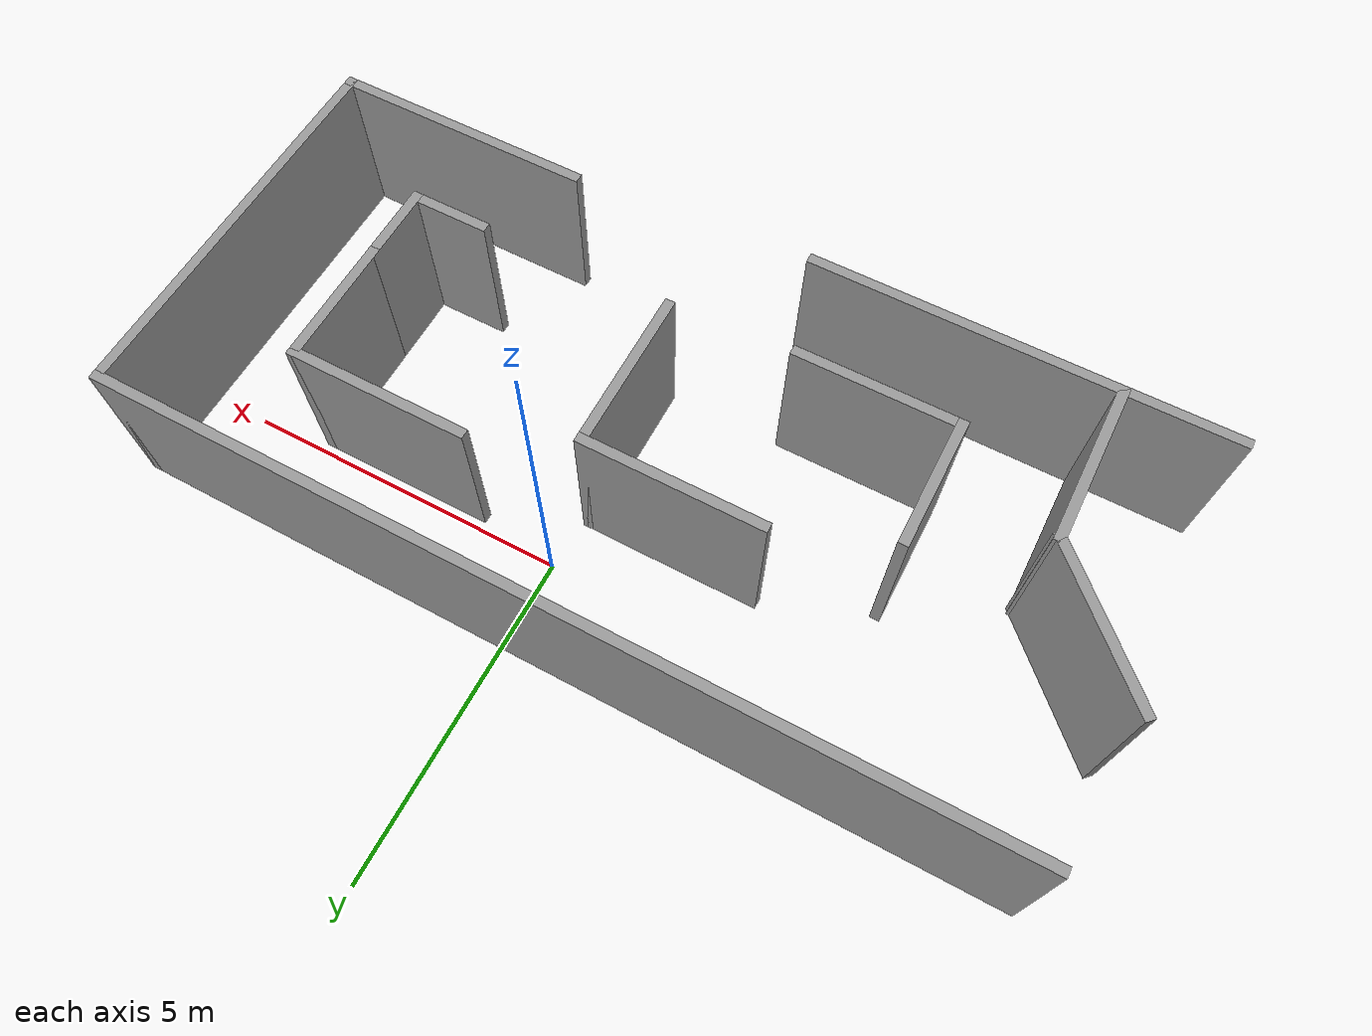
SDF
<?xml version='1.0'?>
<sdf version='1.7'>
  <model name='Untitled'>
    <pose>-0.895108 -1.7499 0 0 -0 0</pose>
    <link name='Wall_1'>
      <collision name='Wall_1_Collision'>
        <geometry>
          <box>
            <size>13.5 0.15 2.5</size>
          </box>
        </geometry>
        <pose>0 0 1.25 0 -0 0</pose>
      </collision>
      <visual name='Wall_1_Visual'>
        <pose>0 0 1.25 0 -0 0</pose>
        <geometry>
          <box>
            <size>13.5 0.15 2.5</size>
          </box>
        </geometry>
        <material>
          <script>
            <uri>file://media/materials/scripts/gazebo.material</uri>
            <name>Gazebo/Grey</name>
          </script>
          <ambient>1 1 1 1</ambient>
        </material>
        <meta>
          <layer>0</layer>
        </meta>
      </visual>
      <pose>0.145458 3.0682 0 0 -0 0</pose>
    </link>
    <link name='Wall_10'>
      <collision name='Wall_10_Collision'>
        <geometry>
          <box>
            <size>2.5 0.15 2.5</size>
          </box>
        </geometry>
        <pose>0 0 1.25 0 -0 0</pose>
      </collision>
      <visual name='Wall_10_Visual'>
        <pose>0 0 1.25 0 -0 0</pose>
        <geometry>
          <box>
            <size>2.5 0.15 2.5</size>
          </box>
        </geometry>
        <material>
          <script>
            <uri>file://media/materials/scripts/gazebo.material</uri>
            <name>Gazebo/Grey</name>
          </script>
          <ambient>1 1 1 1</ambient>
        </material>
        <meta>
          <layer>0</layer>
        </meta>
      </visual>
      <pose>-2.28719 -1.6025 0 0 -0 0</pose>
    </link>
    <link name='Wall_12'>
      <collision name='Wall_12_Collision'>
        <geometry>
          <box>
            <size>2.75 0.15 2.5</size>
          </box>
        </geometry>
        <pose>0 0 1.25 0 -0 0</pose>
      </collision>
      <visual name='Wall_12_Visual'>
        <pose>0 0 1.25 0 -0 0</pose>
        <geometry>
          <box>
            <size>2.75 0.15 2.5</size>
          </box>
        </geometry>
        <material>
          <script>
            <uri>file://media/materials/scripts/gazebo.material</uri>
            <name>Gazebo/Grey</name>
          </script>
          <ambient>1 1 1 1</ambient>
        </material>
        <meta>
          <layer>0</layer>
        </meta>
      </visual>
      <pose>-0.552193 0.891497 0 0 -0 0</pose>
    </link>
    <link name='Wall_13'>
      <collision name='Wall_13_Collision'>
        <geometry>
          <box>
            <size>2.5 0.15 2.5</size>
          </box>
        </geometry>
        <pose>0 0 1.25 0 -0 0</pose>
      </collision>
      <visual name='Wall_13_Visual'>
        <pose>0 0 1.25 0 -0 0</pose>
        <geometry>
          <box>
            <size>2.5 0.15 2.5</size>
          </box>
        </geometry>
        <material>
          <script>
            <uri>file://media/materials/scripts/gazebo.material</uri>
            <name>Gazebo/Grey</name>
          </script>
          <ambient>1 1 1 1</ambient>
        </material>
        <meta>
          <layer>0</layer>
        </meta>
      </visual>
      <pose>0.747807 -0.283503 0 0 -0 -1.5708</pose>
    </link>
    <link name='Wall_15'>
      <collision name='Wall_15_Collision'>
        <geometry>
          <box>
            <size>1.25 0.15 2.5</size>
          </box>
        </geometry>
        <pose>0 0 1.25 0 -0 0</pose>
      </collision>
      <visual name='Wall_15_Visual'>
        <pose>0 0 1.25 0 -0 0</pose>
        <geometry>
          <box>
            <size>1.25 0.15 2.5</size>
          </box>
        </geometry>
        <material>
          <script>
            <uri>file://media/materials/scripts/gazebo.material</uri>
            <name>Gazebo/Grey</name>
          </script>
          <ambient>1 1 1 1</ambient>
        </material>
        <meta>
          <layer>0</layer>
        </meta>
      </visual>
      <pose>4.21781 -1.4085 0 0 -0 0</pose>
    </link>
    <link name='Wall_16'>
      <collision name='Wall_16_Collision'>
        <geometry>
          <box>
            <size>1.25 0.15 2.5</size>
          </box>
        </geometry>
        <pose>0 0 1.25 0 -0 0</pose>
      </collision>
      <visual name='Wall_16_Visual'>
        <pose>0 0 1.25 0 -0 0</pose>
        <geometry>
          <box>
            <size>1.25 0.15 2.5</size>
          </box>
        </geometry>
        <material>
          <script>
            <uri>file://media/materials/scripts/gazebo.material</uri>
            <name>Gazebo/Grey</name>
          </script>
          <ambient>1 1 1 1</ambient>
        </material>
        <meta>
          <layer>0</layer>
        </meta>
      </visual>
      <pose>4.76781 -0.858503 0 0 -0 1.5708</pose>
    </link>
    <link name='Wall_17'>
      <collision name='Wall_17_Collision'>
        <geometry>
          <box>
            <size>2 0.15 2.5</size>
          </box>
        </geometry>
        <pose>0 0 1.25 0 -0 0</pose>
      </collision>
      <visual name='Wall_17_Visual'>
        <pose>0 0 1.25 0 -0 0</pose>
        <geometry>
          <box>
            <size>2 0.15 2.5</size>
          </box>
        </geometry>
        <material>
          <script>
            <uri>file://media/materials/scripts/gazebo.material</uri>
            <name>Gazebo/Grey</name>
          </script>
          <ambient>1 1 1 1</ambient>
        </material>
        <meta>
          <layer>0</layer>
        </meta>
      </visual>
      <pose>4.76781 0.616497 0 0 -0 1.5708</pose>
    </link>
    <link name='Wall_18'>
      <collision name='Wall_18_Collision'>
        <geometry>
          <box>
            <size>2.75 0.15 2.5</size>
          </box>
        </geometry>
        <pose>0 0 1.25 0 -0 0</pose>
      </collision>
      <visual name='Wall_18_Visual'>
        <pose>0 0 1.25 0 -0 0</pose>
        <geometry>
          <box>
            <size>2.75 0.15 2.5</size>
          </box>
        </geometry>
        <material>
          <script>
            <uri>file://media/materials/scripts/gazebo.material</uri>
            <name>Gazebo/Grey</name>
          </script>
          <ambient>1 1 1 1</ambient>
        </material>
        <meta>
          <layer>0</layer>
        </meta>
      </visual>
      <pose>3.46781 1.5415 0 0 -0 3.14159</pose>
    </link>
    <link name='Wall_2'>
      <collision name='Wall_2_Collision'>
        <geometry>
          <box>
            <size>6 0.15 2.5</size>
          </box>
        </geometry>
        <pose>0 0 1.25 0 -0 0</pose>
      </collision>
      <visual name='Wall_2_Visual'>
        <pose>0 0 1.25 0 -0 0</pose>
        <geometry>
          <box>
            <size>6 0.15 2.5</size>
          </box>
        </geometry>
        <material>
          <script>
            <uri>file://media/materials/scripts/gazebo.material</uri>
            <name>Gazebo/Grey</name>
          </script>
          <ambient>1 1 1 1</ambient>
        </material>
        <meta>
          <layer>0</layer>
        </meta>
      </visual>
      <pose>6.82046 0.1432 0 0 -0 -1.5708</pose>
    </link>
    <link name='Wall_20'>
      <collision name='Wall_20_Collision'>
        <geometry>
          <box>
            <size>2.5 0.15 2.5</size>
          </box>
        </geometry>
        <pose>0 0 1.25 0 -0 0</pose>
      </collision>
      <visual name='Wall_20_Visual'>
        <pose>0 0 1.25 0 -0 0</pose>
        <geometry>
          <box>
            <size>2.5 0.15 2.5</size>
          </box>
        </geometry>
        <material>
          <script>
            <uri>file://media/materials/scripts/gazebo.material</uri>
            <name>Gazebo/Grey</name>
          </script>
          <ambient>1 1 1 1</ambient>
        </material>
        <meta>
          <layer>0</layer>
        </meta>
      </visual>
      <pose>-5.95854 0.1391 0 0 -0 2.35619</pose>
    </link>
    <link name='Wall_3'>
      <collision name='Wall_3_Collision'>
        <geometry>
          <box>
            <size>4 0.15 2.5</size>
          </box>
        </geometry>
        <pose>0 0 1.25 0 -0 0</pose>
      </collision>
      <visual name='Wall_3_Visual'>
        <pose>0 0 1.25 0 -0 0</pose>
        <geometry>
          <box>
            <size>4 0.15 2.5</size>
          </box>
        </geometry>
        <material>
          <script>
            <uri>file://media/materials/scripts/gazebo.material</uri>
            <name>Gazebo/Grey</name>
          </script>
          <ambient>1 1 1 1</ambient>
        </material>
        <meta>
          <layer>0</layer>
        </meta>
      </visual>
      <pose>4.89546 -2.7818 0 0 -0 3.14159</pose>
    </link>
    <link name='Wall_5'>
      <collision name='Wall_5_Collision'>
        <geometry>
          <box>
            <size>6.25 0.15 2.5</size>
          </box>
        </geometry>
        <pose>0 0 1.25 0 -0 0</pose>
      </collision>
      <visual name='Wall_5_Visual'>
        <pose>0 0 1.25 0 -0 0</pose>
        <geometry>
          <box>
            <size>6.25 0.15 2.5</size>
          </box>
        </geometry>
        <material>
          <script>
            <uri>file://media/materials/scripts/gazebo.material</uri>
            <name>Gazebo/Grey</name>
          </script>
          <ambient>1 1 1 1</ambient>
        </material>
        <meta>
          <layer>0</layer>
        </meta>
      </visual>
      <pose>-3.71759 -3.0682 0 0 -0 0</pose>
    </link>
    <link name='Wall_7'>
      <collision name='Wall_7_Collision'>
        <geometry>
          <box>
            <size>2.5 0.15 2.5</size>
          </box>
        </geometry>
        <pose>0 0 1.25 0 -0 0</pose>
      </collision>
      <visual name='Wall_7_Visual'>
        <pose>0 0 1.25 0 -0 0</pose>
        <geometry>
          <box>
            <size>2.5 0.15 2.5</size>
          </box>
        </geometry>
        <material>
          <script>
            <uri>file://media/materials/scripts/gazebo.material</uri>
            <name>Gazebo/Grey</name>
          </script>
          <ambient>1 1 1 1</ambient>
        </material>
        <meta>
          <layer>0</layer>
        </meta>
      </visual>
      <pose>-5.12769 -1.86675 0 0 -0 1.5708</pose>
    </link>
    <link name='Wall_9'>
      <collision name='Wall_9_Collision'>
        <geometry>
          <box>
            <size>2 0.15 2.5</size>
          </box>
        </geometry>
        <pose>0 0 1.25 0 -0 0</pose>
      </collision>
      <visual name='Wall_9_Visual'>
        <pose>0 0 1.25 0 -0 0</pose>
        <geometry>
          <box>
            <size>2 0.15 2.5</size>
          </box>
        </geometry>
        <material>
          <script>
            <uri>file://media/materials/scripts/gazebo.material</uri>
            <name>Gazebo/Grey</name>
          </script>
          <ambient>1 1 1 1</ambient>
        </material>
        <meta>
          <layer>0</layer>
        </meta>
      </visual>
      <pose>-3.46219 -0.677503 0 0 -0 -1.5708</pose>
    </link>
    <static>1</static>
  </model>
</sdf>
